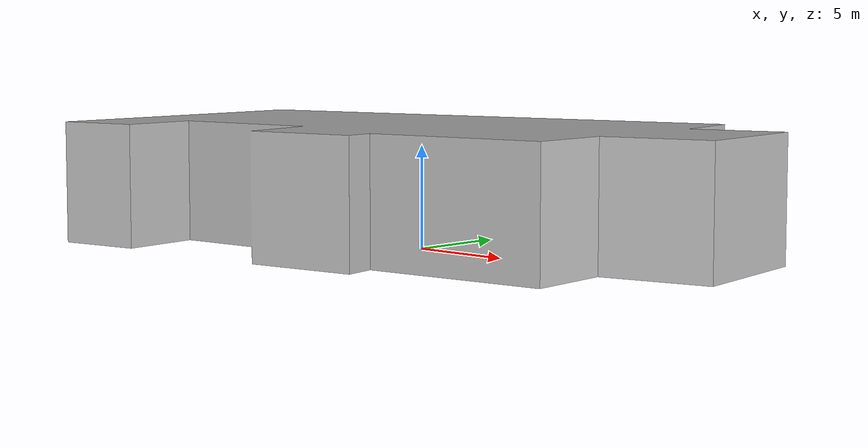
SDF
<?xml version="1.0" ?>
<sdf version="1.7">
  <model name="building_3475_assumed_a_igreja_matriz">
    <static>true</static>
    <link name="building_link">
      <visual name="building_visual">
        <geometry>
          <mesh>
            <uri>model://building_3475_assumed_a_igreja_matriz/meshes/construction_3475_assumed_A_Igreja_matriz_h6m.obj</uri>
          </mesh>
        </geometry>
      </visual>
    <collision name="building_collision">
      <geometry>
        <mesh>
          <uri>model://building_3475_assumed_a_igreja_matriz/meshes/construction_3475_assumed_A_Igreja_matriz_h6m.obj</uri>
        </mesh>
      </geometry>
    </collision>
    </link>
  </model>
</sdf>
